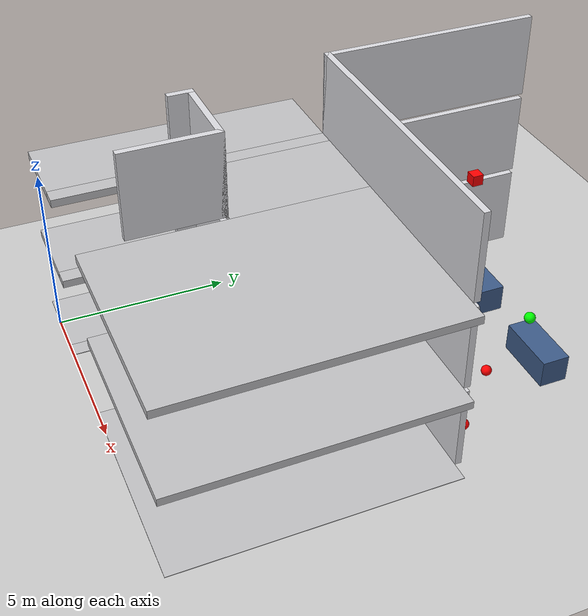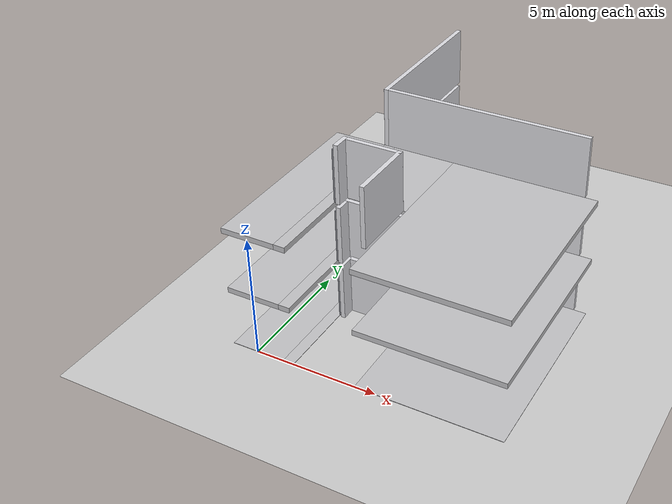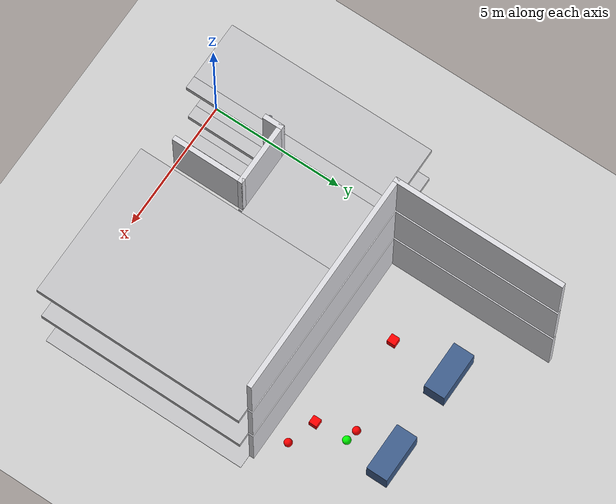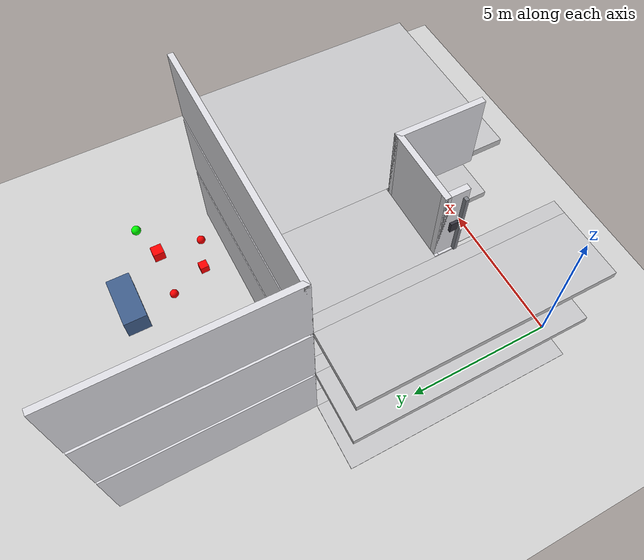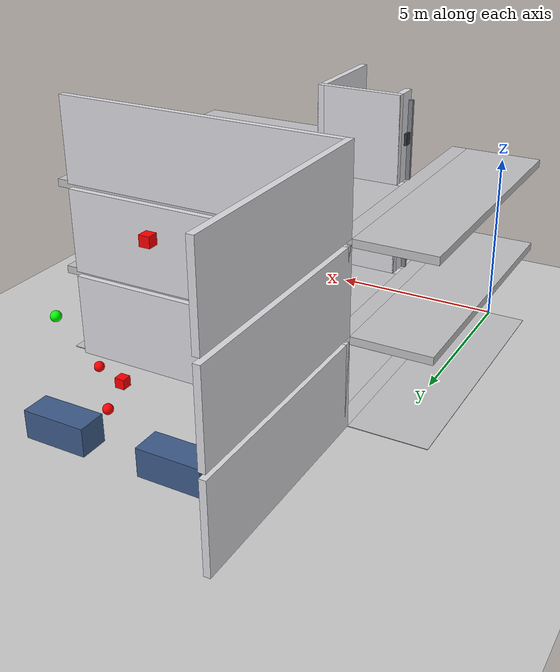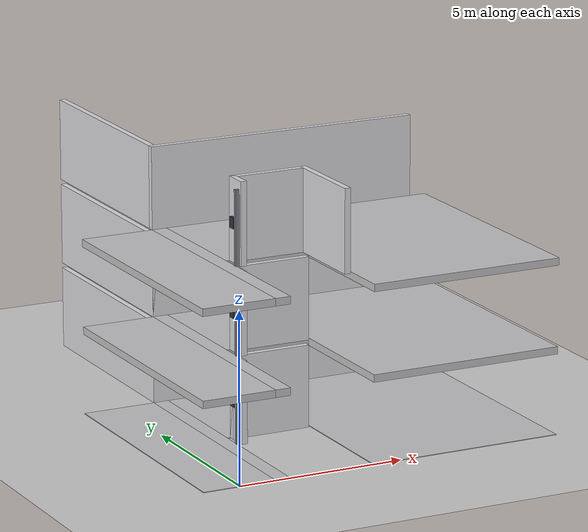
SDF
<sdf version="1.7">
 <world name="generated_world">
  <include><uri>model://sun</uri></include>
  <include><uri>model://ground_plane</uri></include>
  <model name="generated_building">
   <static>true</static>
   <link name="slab_floor_0_3">
    <pose>0.0000 3.9250 -0.1100 0.0000 0.0000 0.0000</pose>
    <collision name="slab_floor_0_3_collision">
     <geometry><box><size>2.2000 7.8500 0.2200</size></box></geometry>
    </collision>
    <visual name="slab_floor_0_3_visual">
     <geometry><box><size>2.2000 7.8500 0.2200</size></box></geometry>
     <material><ambient>0.76 0.76 0.77 1</ambient><diffuse>0.76 0.76 0.77 1</diffuse></material>
    </visual>
    <gravity>false</gravity>
   </link>
   <link name="slab_floor_0_4">
    <pose>1.3300 3.9250 -0.1100 0.0000 0.0000 0.0000</pose>
    <collision name="slab_floor_0_4_collision">
     <geometry><box><size>0.4600 7.8500 0.2200</size></box></geometry>
    </collision>
    <visual name="slab_floor_0_4_visual">
     <geometry><box><size>0.4600 7.8500 0.2200</size></box></geometry>
     <material><ambient>0.76 0.76 0.77 1</ambient><diffuse>0.76 0.76 0.77 1</diffuse></material>
    </visual>
    <gravity>false</gravity>
   </link>
   <link name="slab_floor_0_5">
    <pose>7.0700 3.9250 -0.1100 0.0000 0.0000 0.0000</pose>
    <collision name="slab_floor_0_5_collision">
     <geometry><box><size>5.8600 7.8500 0.2200</size></box></geometry>
    </collision>
    <visual name="slab_floor_0_5_visual">
     <geometry><box><size>5.8600 7.8500 0.2200</size></box></geometry>
     <material><ambient>0.76 0.76 0.77 1</ambient><diffuse>0.76 0.76 0.77 1</diffuse></material>
    </visual>
    <gravity>false</gravity>
   </link>
   <link name="elevator_edge_infill_north_floor_0">
    <pose>2.8500 5.9000 -0.1100 0.0000 0.0000 0.0000</pose>
    <collision name="elevator_edge_infill_north_floor_0_collision">
     <geometry><box><size>2.5800 3.9000 0.2200</size></box></geometry>
    </collision>
    <visual name="elevator_edge_infill_north_floor_0_visual">
     <geometry><box><size>2.5800 3.9000 0.2200</size></box></geometry>
     <material><ambient>0.76 0.76 0.77 1</ambient><diffuse>0.76 0.76 0.77 1</diffuse></material>
    </visual>
    <gravity>false</gravity>
   </link>
   <link name="floor_0_room_1_corridor_wall_lower">
    <pose>1.1900 11.0575 1.2250 0.0000 0.0000 0.0000</pose>
    <collision name="floor_0_room_1_corridor_wall_lower_collision">
     <geometry><box><size>0.1800 6.4150 2.4500</size></box></geometry>
    </collision>
    <visual name="floor_0_room_1_corridor_wall_lower_visual">
     <geometry><box><size>0.1800 6.4150 2.4500</size></box></geometry>
     <material><ambient>0.86 0.86 0.88 1</ambient><diffuse>0.86 0.86 0.88 1</diffuse></material>
    </visual>
    <gravity>false</gravity>
   </link>
   <link name="floor_0_room_1_south_wall">
    <pose>5.3000 7.9400 1.2250 0.0000 0.0000 0.0000</pose>
    <collision name="floor_0_room_1_south_wall_collision">
     <geometry><box><size>8.4000 0.1800 2.4500</size></box></geometry>
    </collision>
    <visual name="floor_0_room_1_south_wall_visual">
     <geometry><box><size>8.4000 0.1800 2.4500</size></box></geometry>
     <material><ambient>0.86 0.86 0.88 1</ambient><diffuse>0.86 0.86 0.88 1</diffuse></material>
    </visual>
    <gravity>false</gravity>
   </link>
   <link name="elevator_core_floor_0_west_upper">
    <pose>1.7400 3.5850 1.2250 0.0000 0.0000 0.0000</pose>
    <collision name="elevator_core_floor_0_west_upper_collision">
     <geometry><box><size>0.1800 0.7300 2.4500</size></box></geometry>
    </collision>
    <visual name="elevator_core_floor_0_west_upper_visual">
     <geometry><box><size>0.1800 0.7300 2.4500</size></box></geometry>
     <material><ambient>0.86 0.86 0.88 1</ambient><diffuse>0.86 0.86 0.88 1</diffuse></material>
    </visual>
    <gravity>false</gravity>
   </link>
   <link name="elevator_core_floor_0_north">
    <pose>2.8500 3.8600 1.2250 0.0000 0.0000 0.0000</pose>
    <collision name="elevator_core_floor_0_north_collision">
     <geometry><box><size>2.4000 0.1800 2.4500</size></box></geometry>
    </collision>
    <visual name="elevator_core_floor_0_north_visual">
     <geometry><box><size>2.4000 0.1800 2.4500</size></box></geometry>
     <material><ambient>0.86 0.86 0.88 1</ambient><diffuse>0.86 0.86 0.88 1</diffuse></material>
    </visual>
    <gravity>false</gravity>
   </link>
   <link name="elevator_jamb_right_floor_0">
    <pose>1.5900 3.3500 1.1000 0.0000 0.0000 0.0000</pose>
    <collision name="elevator_jamb_right_floor_0_collision">
     <geometry><box><size>0.1200 0.1000 2.2000</size></box></geometry>
    </collision>
    <visual name="elevator_jamb_right_floor_0_visual">
     <geometry><box><size>0.1200 0.1000 2.2000</size></box></geometry>
     <material><ambient>0.50 0.51 0.54 1</ambient><diffuse>0.50 0.51 0.54 1</diffuse></material>
    </visual>
    <gravity>false</gravity>
   </link>
   <link name="elevator_call_panel_floor_0">
    <pose>1.5700 3.5800 1.2000 0.0000 0.0000 0.0000</pose>
    <collision name="elevator_call_panel_floor_0_collision">
     <geometry><box><size>0.0800 0.2200 0.3200</size></box></geometry>
    </collision>
    <visual name="elevator_call_panel_floor_0_visual">
     <geometry><box><size>0.0800 0.2200 0.3200</size></box></geometry>
     <material><ambient>0.20 0.20 0.24 1</ambient><diffuse>0.20 0.20 0.24 1</diffuse></material>
    </visual>
    <gravity>false</gravity>
   </link>
   <link name="floor_0_room_1_sofa_a">
    <pose>3.6000 11.8075 0.4500 0.0000 0.0000 0.0000</pose>
    <collision name="floor_0_room_1_sofa_a_collision">
     <geometry><box><size>1.8000 0.8000 0.8000</size></box></geometry>
    </collision>
    <visual name="floor_0_room_1_sofa_a_visual">
     <geometry><box><size>1.8000 0.8000 0.8000</size></box></geometry>
     <material><ambient>0.24 0.36 0.54 1</ambient><diffuse>0.24 0.36 0.54 1</diffuse></material>
    </visual>
    <gravity>false</gravity>
   </link>
   <link name="floor_0_room_1_sofa_b">
    <pose>7.0000 11.8075 0.4500 0.0000 0.0000 3.1400</pose>
    <collision name="floor_0_room_1_sofa_b_collision">
     <geometry><box><size>1.8000 0.8000 0.8000</size></box></geometry>
    </collision>
    <visual name="floor_0_room_1_sofa_b_visual">
     <geometry><box><size>1.8000 0.8000 0.8000</size></box></geometry>
     <material><ambient>0.24 0.36 0.54 1</ambient><diffuse>0.24 0.36 0.54 1</diffuse></material>
    </visual>
    <gravity>false</gravity>
   </link>
   <link name="slab_floor_1_3">
    <pose>0.0000 3.9250 2.4900 0.0000 0.0000 0.0000</pose>
    <collision name="slab_floor_1_3_collision">
     <geometry><box><size>2.2000 7.8500 0.2200</size></box></geometry>
    </collision>
    <visual name="slab_floor_1_3_visual">
     <geometry><box><size>2.2000 7.8500 0.2200</size></box></geometry>
     <material><ambient>0.76 0.76 0.77 1</ambient><diffuse>0.76 0.76 0.77 1</diffuse></material>
    </visual>
    <gravity>false</gravity>
   </link>
   <link name="slab_floor_1_4">
    <pose>1.3300 3.9250 2.4900 0.0000 0.0000 0.0000</pose>
    <collision name="slab_floor_1_4_collision">
     <geometry><box><size>0.4600 7.8500 0.2200</size></box></geometry>
    </collision>
    <visual name="slab_floor_1_4_visual">
     <geometry><box><size>0.4600 7.8500 0.2200</size></box></geometry>
     <material><ambient>0.76 0.76 0.77 1</ambient><diffuse>0.76 0.76 0.77 1</diffuse></material>
    </visual>
    <gravity>false</gravity>
   </link>
   <link name="slab_floor_1_5">
    <pose>7.0700 3.9250 2.4900 0.0000 0.0000 0.0000</pose>
    <collision name="slab_floor_1_5_collision">
     <geometry><box><size>5.8600 7.8500 0.2200</size></box></geometry>
    </collision>
    <visual name="slab_floor_1_5_visual">
     <geometry><box><size>5.8600 7.8500 0.2200</size></box></geometry>
     <material><ambient>0.76 0.76 0.77 1</ambient><diffuse>0.76 0.76 0.77 1</diffuse></material>
    </visual>
    <gravity>false</gravity>
   </link>
   <link name="elevator_edge_infill_north_floor_1">
    <pose>2.8500 5.9000 2.4900 0.0000 0.0000 0.0000</pose>
    <collision name="elevator_edge_infill_north_floor_1_collision">
     <geometry><box><size>2.5800 3.9000 0.2200</size></box></geometry>
    </collision>
    <visual name="elevator_edge_infill_north_floor_1_visual">
     <geometry><box><size>2.5800 3.9000 0.2200</size></box></geometry>
     <material><ambient>0.76 0.76 0.77 1</ambient><diffuse>0.76 0.76 0.77 1</diffuse></material>
    </visual>
    <gravity>false</gravity>
   </link>
   <link name="floor_1_room_1_corridor_wall_lower">
    <pose>1.1900 11.0575 3.8250 0.0000 0.0000 0.0000</pose>
    <collision name="floor_1_room_1_corridor_wall_lower_collision">
     <geometry><box><size>0.1800 6.4150 2.4500</size></box></geometry>
    </collision>
    <visual name="floor_1_room_1_corridor_wall_lower_visual">
     <geometry><box><size>0.1800 6.4150 2.4500</size></box></geometry>
     <material><ambient>0.86 0.86 0.88 1</ambient><diffuse>0.86 0.86 0.88 1</diffuse></material>
    </visual>
    <gravity>false</gravity>
   </link>
   <link name="floor_1_room_1_south_wall">
    <pose>5.3000 7.9400 3.8250 0.0000 0.0000 0.0000</pose>
    <collision name="floor_1_room_1_south_wall_collision">
     <geometry><box><size>8.4000 0.1800 2.4500</size></box></geometry>
    </collision>
    <visual name="floor_1_room_1_south_wall_visual">
     <geometry><box><size>8.4000 0.1800 2.4500</size></box></geometry>
     <material><ambient>0.86 0.86 0.88 1</ambient><diffuse>0.86 0.86 0.88 1</diffuse></material>
    </visual>
    <gravity>false</gravity>
   </link>
   <link name="elevator_core_floor_1_west_upper">
    <pose>1.7400 3.5850 3.8250 0.0000 0.0000 0.0000</pose>
    <collision name="elevator_core_floor_1_west_upper_collision">
     <geometry><box><size>0.1800 0.7300 2.4500</size></box></geometry>
    </collision>
    <visual name="elevator_core_floor_1_west_upper_visual">
     <geometry><box><size>0.1800 0.7300 2.4500</size></box></geometry>
     <material><ambient>0.86 0.86 0.88 1</ambient><diffuse>0.86 0.86 0.88 1</diffuse></material>
    </visual>
    <gravity>false</gravity>
   </link>
   <link name="elevator_core_floor_1_north">
    <pose>2.8500 3.8600 3.8250 0.0000 0.0000 0.0000</pose>
    <collision name="elevator_core_floor_1_north_collision">
     <geometry><box><size>2.4000 0.1800 2.4500</size></box></geometry>
    </collision>
    <visual name="elevator_core_floor_1_north_visual">
     <geometry><box><size>2.4000 0.1800 2.4500</size></box></geometry>
     <material><ambient>0.86 0.86 0.88 1</ambient><diffuse>0.86 0.86 0.88 1</diffuse></material>
    </visual>
    <gravity>false</gravity>
   </link>
   <link name="elevator_jamb_right_floor_1">
    <pose>1.5900 3.3500 3.7000 0.0000 0.0000 0.0000</pose>
    <collision name="elevator_jamb_right_floor_1_collision">
     <geometry><box><size>0.1200 0.1000 2.2000</size></box></geometry>
    </collision>
    <visual name="elevator_jamb_right_floor_1_visual">
     <geometry><box><size>0.1200 0.1000 2.2000</size></box></geometry>
     <material><ambient>0.50 0.51 0.54 1</ambient><diffuse>0.50 0.51 0.54 1</diffuse></material>
    </visual>
    <gravity>false</gravity>
   </link>
   <link name="elevator_call_panel_floor_1">
    <pose>1.5700 3.5800 3.8000 0.0000 0.0000 0.0000</pose>
    <collision name="elevator_call_panel_floor_1_collision">
     <geometry><box><size>0.0800 0.2200 0.3200</size></box></geometry>
    </collision>
    <visual name="elevator_call_panel_floor_1_visual">
     <geometry><box><size>0.0800 0.2200 0.3200</size></box></geometry>
     <material><ambient>0.20 0.20 0.24 1</ambient><diffuse>0.20 0.20 0.24 1</diffuse></material>
    </visual>
    <gravity>false</gravity>
   </link>
   <link name="slab_floor_2_3">
    <pose>0.0000 3.9250 5.0900 0.0000 0.0000 0.0000</pose>
    <collision name="slab_floor_2_3_collision">
     <geometry><box><size>2.2000 7.8500 0.2200</size></box></geometry>
    </collision>
    <visual name="slab_floor_2_3_visual">
     <geometry><box><size>2.2000 7.8500 0.2200</size></box></geometry>
     <material><ambient>0.76 0.76 0.77 1</ambient><diffuse>0.76 0.76 0.77 1</diffuse></material>
    </visual>
    <gravity>false</gravity>
   </link>
   <link name="slab_floor_2_4">
    <pose>1.3300 3.9250 5.0900 0.0000 0.0000 0.0000</pose>
    <collision name="slab_floor_2_4_collision">
     <geometry><box><size>0.4600 7.8500 0.2200</size></box></geometry>
    </collision>
    <visual name="slab_floor_2_4_visual">
     <geometry><box><size>0.4600 7.8500 0.2200</size></box></geometry>
     <material><ambient>0.76 0.76 0.77 1</ambient><diffuse>0.76 0.76 0.77 1</diffuse></material>
    </visual>
    <gravity>false</gravity>
   </link>
   <link name="slab_floor_2_5">
    <pose>7.0700 3.9250 5.0900 0.0000 0.0000 0.0000</pose>
    <collision name="slab_floor_2_5_collision">
     <geometry><box><size>5.8600 7.8500 0.2200</size></box></geometry>
    </collision>
    <visual name="slab_floor_2_5_visual">
     <geometry><box><size>5.8600 7.8500 0.2200</size></box></geometry>
     <material><ambient>0.76 0.76 0.77 1</ambient><diffuse>0.76 0.76 0.77 1</diffuse></material>
    </visual>
    <gravity>false</gravity>
   </link>
   <link name="elevator_edge_infill_north_floor_2">
    <pose>2.8500 5.9000 5.0900 0.0000 0.0000 0.0000</pose>
    <collision name="elevator_edge_infill_north_floor_2_collision">
     <geometry><box><size>2.5800 3.9000 0.2200</size></box></geometry>
    </collision>
    <visual name="elevator_edge_infill_north_floor_2_visual">
     <geometry><box><size>2.5800 3.9000 0.2200</size></box></geometry>
     <material><ambient>0.76 0.76 0.77 1</ambient><diffuse>0.76 0.76 0.77 1</diffuse></material>
    </visual>
    <gravity>false</gravity>
   </link>
   <link name="floor_2_room_1_corridor_wall_lower">
    <pose>1.1900 11.0575 6.4250 0.0000 0.0000 0.0000</pose>
    <collision name="floor_2_room_1_corridor_wall_lower_collision">
     <geometry><box><size>0.1800 6.4150 2.4500</size></box></geometry>
    </collision>
    <visual name="floor_2_room_1_corridor_wall_lower_visual">
     <geometry><box><size>0.1800 6.4150 2.4500</size></box></geometry>
     <material><ambient>0.86 0.86 0.88 1</ambient><diffuse>0.86 0.86 0.88 1</diffuse></material>
    </visual>
    <gravity>false</gravity>
   </link>
   <link name="floor_2_room_1_south_wall">
    <pose>5.3000 7.9400 6.4250 0.0000 0.0000 0.0000</pose>
    <collision name="floor_2_room_1_south_wall_collision">
     <geometry><box><size>8.4000 0.1800 2.4500</size></box></geometry>
    </collision>
    <visual name="floor_2_room_1_south_wall_visual">
     <geometry><box><size>8.4000 0.1800 2.4500</size></box></geometry>
     <material><ambient>0.86 0.86 0.88 1</ambient><diffuse>0.86 0.86 0.88 1</diffuse></material>
    </visual>
    <gravity>false</gravity>
   </link>
   <link name="elevator_core_floor_2_west_upper">
    <pose>1.7400 3.5850 6.4250 0.0000 0.0000 0.0000</pose>
    <collision name="elevator_core_floor_2_west_upper_collision">
     <geometry><box><size>0.1800 0.7300 2.4500</size></box></geometry>
    </collision>
    <visual name="elevator_core_floor_2_west_upper_visual">
     <geometry><box><size>0.1800 0.7300 2.4500</size></box></geometry>
     <material><ambient>0.86 0.86 0.88 1</ambient><diffuse>0.86 0.86 0.88 1</diffuse></material>
    </visual>
    <gravity>false</gravity>
   </link>
   <link name="elevator_core_floor_2_east">
    <pose>3.9600 2.6000 6.4250 0.0000 0.0000 0.0000</pose>
    <collision name="elevator_core_floor_2_east_collision">
     <geometry><box><size>0.1800 2.7000 2.4500</size></box></geometry>
    </collision>
    <visual name="elevator_core_floor_2_east_visual">
     <geometry><box><size>0.1800 2.7000 2.4500</size></box></geometry>
     <material><ambient>0.86 0.86 0.88 1</ambient><diffuse>0.86 0.86 0.88 1</diffuse></material>
    </visual>
    <gravity>false</gravity>
   </link>
   <link name="elevator_core_floor_2_north">
    <pose>2.8500 3.8600 6.4250 0.0000 0.0000 0.0000</pose>
    <collision name="elevator_core_floor_2_north_collision">
     <geometry><box><size>2.4000 0.1800 2.4500</size></box></geometry>
    </collision>
    <visual name="elevator_core_floor_2_north_visual">
     <geometry><box><size>2.4000 0.1800 2.4500</size></box></geometry>
     <material><ambient>0.86 0.86 0.88 1</ambient><diffuse>0.86 0.86 0.88 1</diffuse></material>
    </visual>
    <gravity>false</gravity>
   </link>
   <link name="elevator_jamb_right_floor_2">
    <pose>1.5900 3.3500 6.3000 0.0000 0.0000 0.0000</pose>
    <collision name="elevator_jamb_right_floor_2_collision">
     <geometry><box><size>0.1200 0.1000 2.2000</size></box></geometry>
    </collision>
    <visual name="elevator_jamb_right_floor_2_visual">
     <geometry><box><size>0.1200 0.1000 2.2000</size></box></geometry>
     <material><ambient>0.50 0.51 0.54 1</ambient><diffuse>0.50 0.51 0.54 1</diffuse></material>
    </visual>
    <gravity>false</gravity>
   </link>
   <link name="elevator_call_panel_floor_2">
    <pose>1.5700 3.5800 6.4000 0.0000 0.0000 0.0000</pose>
    <collision name="elevator_call_panel_floor_2_collision">
     <geometry><box><size>0.0800 0.2200 0.3200</size></box></geometry>
    </collision>
    <visual name="elevator_call_panel_floor_2_visual">
     <geometry><box><size>0.0800 0.2200 0.3200</size></box></geometry>
     <material><ambient>0.20 0.20 0.24 1</ambient><diffuse>0.20 0.20 0.24 1</diffuse></material>
    </visual>
    <gravity>false</gravity>
   </link>
  </model>
  <model name="danger_red_sphere_00">
   <static>true</static>
   <pose>8.446609 8.685072 0.150000 0.000000 0.000000 0.000000</pose>
   <link name="link">
    <collision name="collision"><geometry><sphere><radius>0.150</radius></sphere></geometry></collision>
    <visual name="visual">
     <geometry><sphere><radius>0.150</radius></sphere></geometry>
     <material><ambient>1.0 0.0 0.0 1.0</ambient><diffuse>1.0 0.0 0.0 1.0</diffuse></material>
    </visual>
   </link>
  </model>
  <model name="distractor_green_sphere_14">
   <static>true</static>
   <pose>7.965950 10.651778 2.750000 0.000000 0.000000 0.000000</pose>
   <link name="link">
    <collision name="collision"><geometry><sphere><radius>0.150</radius></sphere></geometry></collision>
    <visual name="visual">
     <geometry><sphere><radius>0.150</radius></sphere></geometry>
     <material><ambient>0.0 1.0 0.0 1.0</ambient><diffuse>0.0 1.0 0.0 1.0</diffuse></material>
    </visual>
   </link>
  </model>
  <model name="danger_red_sphere_09">
   <static>true</static>
   <pose>6.846890 10.320166 0.150000 0.000000 0.000000 0.000000</pose>
   <link name="link">
    <collision name="collision"><geometry><sphere><radius>0.150</radius></sphere></geometry></collision>
    <visual name="visual">
     <geometry><sphere><radius>0.150</radius></sphere></geometry>
     <material><ambient>1.0 0.0 0.0 1.0</ambient><diffuse>1.0 0.0 0.0 1.0</diffuse></material>
    </visual>
   </link>
  </model>
  <model name="distractor_red_box_15">
   <static>true</static>
   <pose>5.064558 10.451556 5.350000 0.000000 0.000000 0.000000</pose>
   <link name="link">
    <collision name="collision">
     <geometry><box><size>0.300000 0.300000 0.300000</size></box></geometry>
    </collision>
    <visual name="visual">
     <geometry><box><size>0.300000 0.300000 0.300000</size></box></geometry>
     <material><ambient>1.0 0.0 0.0 1.0</ambient><diffuse>1.0 0.0 0.0 1.0</diffuse></material>
    </visual>
   </link>
  </model>
  <model name="distractor_red_box_17">
   <static>true</static>
   <pose>7.368534 9.026764 0.150000 0.000000 0.000000 0.000000</pose>
   <link name="link">
    <collision name="collision">
     <geometry><box><size>0.300000 0.300000 0.300000</size></box></geometry>
    </collision>
    <visual name="visual">
     <geometry><box><size>0.300000 0.300000 0.300000</size></box></geometry>
     <material><ambient>1.0 0.0 0.0 1.0</ambient><diffuse>1.0 0.0 0.0 1.0</diffuse></material>
    </visual>
   </link>
  </model>
 </world>
</sdf>
